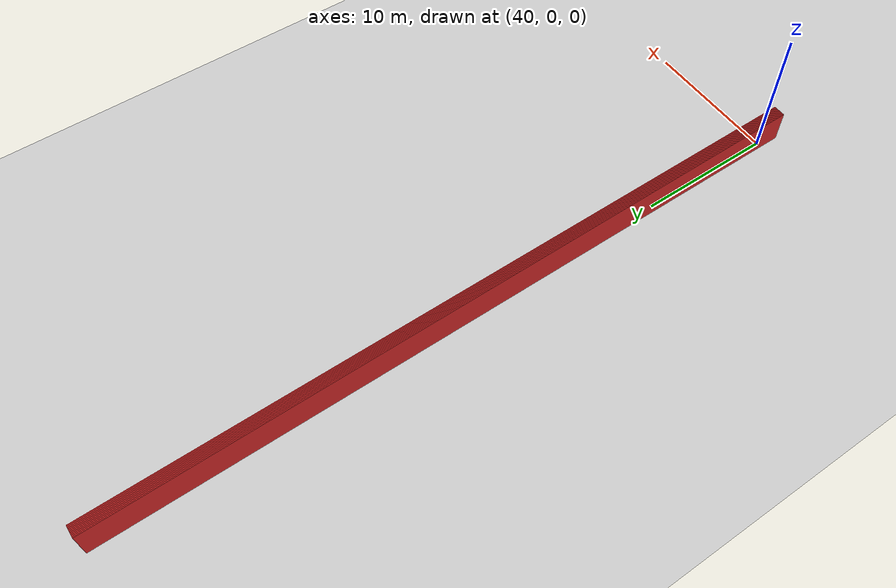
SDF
<sdf version="1.4">
 <world name="1_wall">
  <model name="ground_plane">
   <static>1</static>
   <link name="link">
    <collision name="collision">
     <geometry><plane><normal>0 0 1</normal><size>1000 1000</size></plane></geometry>
     <surface><friction><ode><mu>100</mu><mu2>50</mu2></ode></friction></surface>
    </collision>
    <visual name="visual">
     <cast_shadows>0</cast_shadows>
     <geometry><plane><normal>0 0 1</normal><size>10000 10000</size></plane></geometry>
     <material>
      <script><uri>file://media/materials/scripts/gazebo.material</uri><name>Gazebo/Grey</name></script>
     </material>
    </visual>
    <velocity_decay><linear>0</linear><angular>0</angular></velocity_decay>
   </link>
  </model>
  <model name="Wall_823">
   <static>1</static>
   <link name="Wall_823">
    <collision name="Wall_Collision_823">
     <geometry><box><size>53.65 0.05 2.5</size></box></geometry>
     <pose>0 0 1.25 0 -0 0</pose>
    </collision>
    <visual name="Wall_Visual_823">
     <pose>0 0 1.25 0 -0 0</pose>
     <geometry><box><size>53.65 0.05 2.5</size></box></geometry>
     <material>
      <script><uri>file://media/materials/scripts/gazebo.material</uri><name>Gazebo/Red</name></script>
     </material>
    </visual>
    <velocity_decay><linear>0</linear><angular>0</angular></velocity_decay>
    <pose>39.65 25.3 0 0 0 1.5707963267948966</pose>
   </link>
  </model>
  <model name="Wall_824">
   <static>1</static>
   <link name="Wall_824">
    <collision name="Wall_Collision_824">
     <geometry><box><size>53.65 0.05 2.5</size></box></geometry>
     <pose>0 0 1.25 0 -0 0</pose>
    </collision>
    <visual name="Wall_Visual_824">
     <pose>0 0 1.25 0 -0 0</pose>
     <geometry><box><size>53.65 0.05 2.5</size></box></geometry>
     <material>
      <script><uri>file://media/materials/scripts/gazebo.material</uri><name>Gazebo/Red</name></script>
     </material>
    </visual>
    <velocity_decay><linear>0</linear><angular>0</angular></velocity_decay>
    <pose>39.7 25.3 0 0 0 1.5707963267948966</pose>
   </link>
  </model>
  <model name="Wall_825">
   <static>1</static>
   <link name="Wall_825">
    <collision name="Wall_Collision_825">
     <geometry><box><size>53.65 0.05 2.5</size></box></geometry>
     <pose>0 0 1.25 0 -0 0</pose>
    </collision>
    <visual name="Wall_Visual_825">
     <pose>0 0 1.25 0 -0 0</pose>
     <geometry><box><size>53.65 0.05 2.5</size></box></geometry>
     <material>
      <script><uri>file://media/materials/scripts/gazebo.material</uri><name>Gazebo/Red</name></script>
     </material>
    </visual>
    <velocity_decay><linear>0</linear><angular>0</angular></velocity_decay>
    <pose>39.75 25.3 0 0 0 1.5707963267948966</pose>
   </link>
  </model>
  <model name="Wall_826">
   <static>1</static>
   <link name="Wall_826">
    <collision name="Wall_Collision_826">
     <geometry><box><size>53.65 0.05 2.5</size></box></geometry>
     <pose>0 0 1.25 0 -0 0</pose>
    </collision>
    <visual name="Wall_Visual_826">
     <pose>0 0 1.25 0 -0 0</pose>
     <geometry><box><size>53.65 0.05 2.5</size></box></geometry>
     <material>
      <script><uri>file://media/materials/scripts/gazebo.material</uri><name>Gazebo/Red</name></script>
     </material>
    </visual>
    <velocity_decay><linear>0</linear><angular>0</angular></velocity_decay>
    <pose>39.8 25.3 0 0 0 1.5707963267948966</pose>
   </link>
  </model>
  <model name="Wall_827">
   <static>1</static>
   <link name="Wall_827">
    <collision name="Wall_Collision_827">
     <geometry><box><size>53.65 0.05 2.5</size></box></geometry>
     <pose>0 0 1.25 0 -0 0</pose>
    </collision>
    <visual name="Wall_Visual_827">
     <pose>0 0 1.25 0 -0 0</pose>
     <geometry><box><size>53.65 0.05 2.5</size></box></geometry>
     <material>
      <script><uri>file://media/materials/scripts/gazebo.material</uri><name>Gazebo/Red</name></script>
     </material>
    </visual>
    <velocity_decay><linear>0</linear><angular>0</angular></velocity_decay>
    <pose>39.85 25.3 0 0 0 1.5707963267948966</pose>
   </link>
  </model>
  <model name="Wall_828">
   <static>1</static>
   <link name="Wall_828">
    <collision name="Wall_Collision_828">
     <geometry><box><size>53.65 0.05 2.5</size></box></geometry>
     <pose>0 0 1.25 0 -0 0</pose>
    </collision>
    <visual name="Wall_Visual_828">
     <pose>0 0 1.25 0 -0 0</pose>
     <geometry><box><size>53.65 0.05 2.5</size></box></geometry>
     <material>
      <script><uri>file://media/materials/scripts/gazebo.material</uri><name>Gazebo/Red</name></script>
     </material>
    </visual>
    <velocity_decay><linear>0</linear><angular>0</angular></velocity_decay>
    <pose>39.9 25.3 0 0 0 1.5707963267948966</pose>
   </link>
  </model>
  <model name="Wall_829">
   <static>1</static>
   <link name="Wall_829">
    <collision name="Wall_Collision_829">
     <geometry><box><size>53.65 0.05 2.5</size></box></geometry>
     <pose>0 0 1.25 0 -0 0</pose>
    </collision>
    <visual name="Wall_Visual_829">
     <pose>0 0 1.25 0 -0 0</pose>
     <geometry><box><size>53.65 0.05 2.5</size></box></geometry>
     <material>
      <script><uri>file://media/materials/scripts/gazebo.material</uri><name>Gazebo/Red</name></script>
     </material>
    </visual>
    <velocity_decay><linear>0</linear><angular>0</angular></velocity_decay>
    <pose>39.95 25.3 0 0 0 1.5707963267948966</pose>
   </link>
  </model>
  <model name="Wall_830">
   <static>1</static>
   <link name="Wall_830">
    <collision name="Wall_Collision_830">
     <geometry><box><size>53.65 0.05 2.5</size></box></geometry>
     <pose>0 0 1.25 0 -0 0</pose>
    </collision>
    <visual name="Wall_Visual_830">
     <pose>0 0 1.25 0 -0 0</pose>
     <geometry><box><size>53.65 0.05 2.5</size></box></geometry>
     <material>
      <script><uri>file://media/materials/scripts/gazebo.material</uri><name>Gazebo/Red</name></script>
     </material>
    </visual>
    <velocity_decay><linear>0</linear><angular>0</angular></velocity_decay>
    <pose>40.0 25.3 0 0 0 1.5707963267948966</pose>
   </link>
  </model>
  <model name="Wall_831">
   <static>1</static>
   <link name="Wall_831">
    <collision name="Wall_Collision_831">
     <geometry><box><size>53.65 0.05 2.5</size></box></geometry>
     <pose>0 0 1.25 0 -0 0</pose>
    </collision>
    <visual name="Wall_Visual_831">
     <pose>0 0 1.25 0 -0 0</pose>
     <geometry><box><size>53.65 0.05 2.5</size></box></geometry>
     <material>
      <script><uri>file://media/materials/scripts/gazebo.material</uri><name>Gazebo/Red</name></script>
     </material>
    </visual>
    <velocity_decay><linear>0</linear><angular>0</angular></velocity_decay>
    <pose>40.05 25.3 0 0 0 1.5707963267948966</pose>
   </link>
  </model>
  <model name="Wall_832">
   <static>1</static>
   <link name="Wall_832">
    <collision name="Wall_Collision_832">
     <geometry><box><size>53.65 0.05 2.5</size></box></geometry>
     <pose>0 0 1.25 0 -0 0</pose>
    </collision>
    <visual name="Wall_Visual_832">
     <pose>0 0 1.25 0 -0 0</pose>
     <geometry><box><size>53.65 0.05 2.5</size></box></geometry>
     <material>
      <script><uri>file://media/materials/scripts/gazebo.material</uri><name>Gazebo/Red</name></script>
     </material>
    </visual>
    <velocity_decay><linear>0</linear><angular>0</angular></velocity_decay>
    <pose>40.1 25.3 0 0 0 1.5707963267948966</pose>
   </link>
  </model>
  <model name="Wall_833">
   <static>1</static>
   <link name="Wall_833">
    <collision name="Wall_Collision_833">
     <geometry><box><size>53.65 0.05 2.5</size></box></geometry>
     <pose>0 0 1.25 0 -0 0</pose>
    </collision>
    <visual name="Wall_Visual_833">
     <pose>0 0 1.25 0 -0 0</pose>
     <geometry><box><size>53.65 0.05 2.5</size></box></geometry>
     <material>
      <script><uri>file://media/materials/scripts/gazebo.material</uri><name>Gazebo/Red</name></script>
     </material>
    </visual>
    <velocity_decay><linear>0</linear><angular>0</angular></velocity_decay>
    <pose>40.15 25.3 0 0 0 1.5707963267948966</pose>
   </link>
  </model>
  <model name="Wall_834">
   <static>1</static>
   <link name="Wall_834">
    <collision name="Wall_Collision_834">
     <geometry><box><size>53.65 0.05 2.5</size></box></geometry>
     <pose>0 0 1.25 0 -0 0</pose>
    </collision>
    <visual name="Wall_Visual_834">
     <pose>0 0 1.25 0 -0 0</pose>
     <geometry><box><size>53.65 0.05 2.5</size></box></geometry>
     <material>
      <script><uri>file://media/materials/scripts/gazebo.material</uri><name>Gazebo/Red</name></script>
     </material>
    </visual>
    <velocity_decay><linear>0</linear><angular>0</angular></velocity_decay>
    <pose>40.2 25.3 0 0 0 1.5707963267948966</pose>
   </link>
  </model>
  <model name="Wall_835">
   <static>1</static>
   <link name="Wall_835">
    <collision name="Wall_Collision_835">
     <geometry><box><size>53.65 0.05 2.5</size></box></geometry>
     <pose>0 0 1.25 0 -0 0</pose>
    </collision>
    <visual name="Wall_Visual_835">
     <pose>0 0 1.25 0 -0 0</pose>
     <geometry><box><size>53.65 0.05 2.5</size></box></geometry>
     <material>
      <script><uri>file://media/materials/scripts/gazebo.material</uri><name>Gazebo/Red</name></script>
     </material>
    </visual>
    <velocity_decay><linear>0</linear><angular>0</angular></velocity_decay>
    <pose>40.25 25.3 0 0 0 1.5707963267948966</pose>
   </link>
  </model>
  <model name="Wall_836">
   <static>1</static>
   <link name="Wall_836">
    <collision name="Wall_Collision_836">
     <geometry><box><size>53.65 0.05 2.5</size></box></geometry>
     <pose>0 0 1.25 0 -0 0</pose>
    </collision>
    <visual name="Wall_Visual_836">
     <pose>0 0 1.25 0 -0 0</pose>
     <geometry><box><size>53.65 0.05 2.5</size></box></geometry>
     <material>
      <script><uri>file://media/materials/scripts/gazebo.material</uri><name>Gazebo/Red</name></script>
     </material>
    </visual>
    <velocity_decay><linear>0</linear><angular>0</angular></velocity_decay>
    <pose>40.3 25.3 0 0 0 1.5707963267948966</pose>
   </link>
  </model>
  <model name="Wall_837">
   <static>1</static>
   <link name="Wall_837">
    <collision name="Wall_Collision_837">
     <geometry><box><size>53.65 0.05 2.5</size></box></geometry>
     <pose>0 0 1.25 0 -0 0</pose>
    </collision>
    <visual name="Wall_Visual_837">
     <pose>0 0 1.25 0 -0 0</pose>
     <geometry><box><size>53.65 0.05 2.5</size></box></geometry>
     <material>
      <script><uri>file://media/materials/scripts/gazebo.material</uri><name>Gazebo/Red</name></script>
     </material>
    </visual>
    <velocity_decay><linear>0</linear><angular>0</angular></velocity_decay>
    <pose>40.35 25.3 0 0 0 1.5707963267948966</pose>
   </link>
  </model>
  <model name="Wall_838">
   <static>1</static>
   <link name="Wall_838">
    <collision name="Wall_Collision_838">
     <geometry><box><size>53.65 0.05 2.5</size></box></geometry>
     <pose>0 0 1.25 0 -0 0</pose>
    </collision>
    <visual name="Wall_Visual_838">
     <pose>0 0 1.25 0 -0 0</pose>
     <geometry><box><size>53.65 0.05 2.5</size></box></geometry>
     <material>
      <script><uri>file://media/materials/scripts/gazebo.material</uri><name>Gazebo/Red</name></script>
     </material>
    </visual>
    <velocity_decay><linear>0</linear><angular>0</angular></velocity_decay>
    <pose>40.4 25.3 0 0 0 1.5707963267948966</pose>
   </link>
  </model>
  <model name="Wall_839">
   <static>1</static>
   <link name="Wall_839">
    <collision name="Wall_Collision_839">
     <geometry><box><size>53.65 0.05 2.5</size></box></geometry>
     <pose>0 0 1.25 0 -0 0</pose>
    </collision>
    <visual name="Wall_Visual_839">
     <pose>0 0 1.25 0 -0 0</pose>
     <geometry><box><size>53.65 0.05 2.5</size></box></geometry>
     <material>
      <script><uri>file://media/materials/scripts/gazebo.material</uri><name>Gazebo/Red</name></script>
     </material>
    </visual>
    <velocity_decay><linear>0</linear><angular>0</angular></velocity_decay>
    <pose>40.45 25.3 0 0 0 1.5707963267948966</pose>
   </link>
  </model>
  <model name="Wall_840">
   <static>1</static>
   <link name="Wall_840">
    <collision name="Wall_Collision_840">
     <geometry><box><size>53.65 0.05 2.5</size></box></geometry>
     <pose>0 0 1.25 0 -0 0</pose>
    </collision>
    <visual name="Wall_Visual_840">
     <pose>0 0 1.25 0 -0 0</pose>
     <geometry><box><size>53.65 0.05 2.5</size></box></geometry>
     <material>
      <script><uri>file://media/materials/scripts/gazebo.material</uri><name>Gazebo/Red</name></script>
     </material>
    </visual>
    <velocity_decay><linear>0</linear><angular>0</angular></velocity_decay>
    <pose>40.5 25.3 0 0 0 1.5707963267948966</pose>
   </link>
  </model>
 </world>
</sdf>
